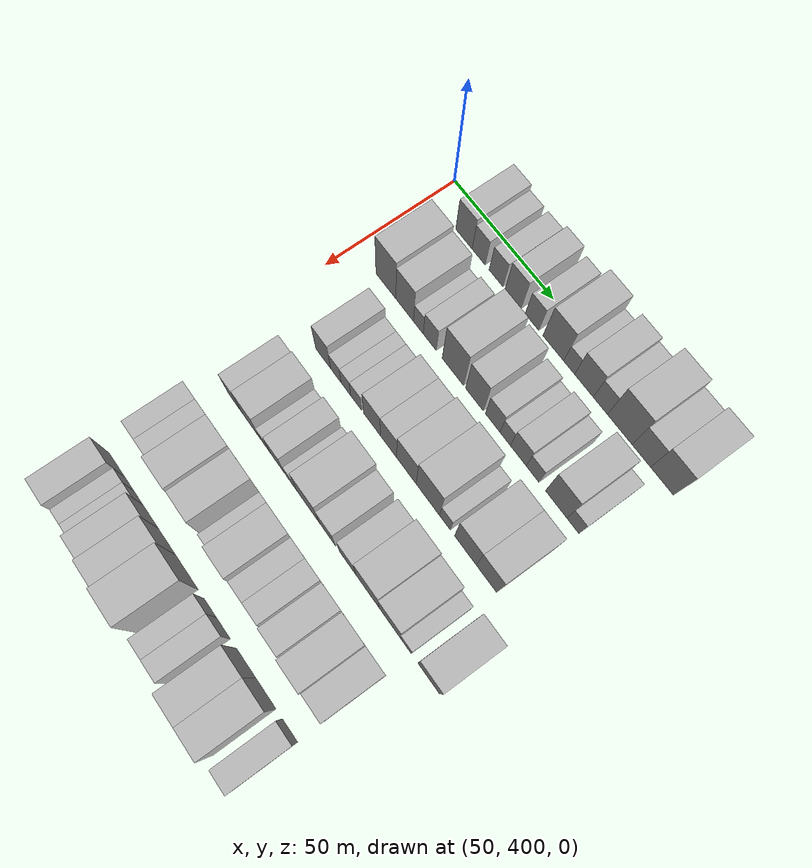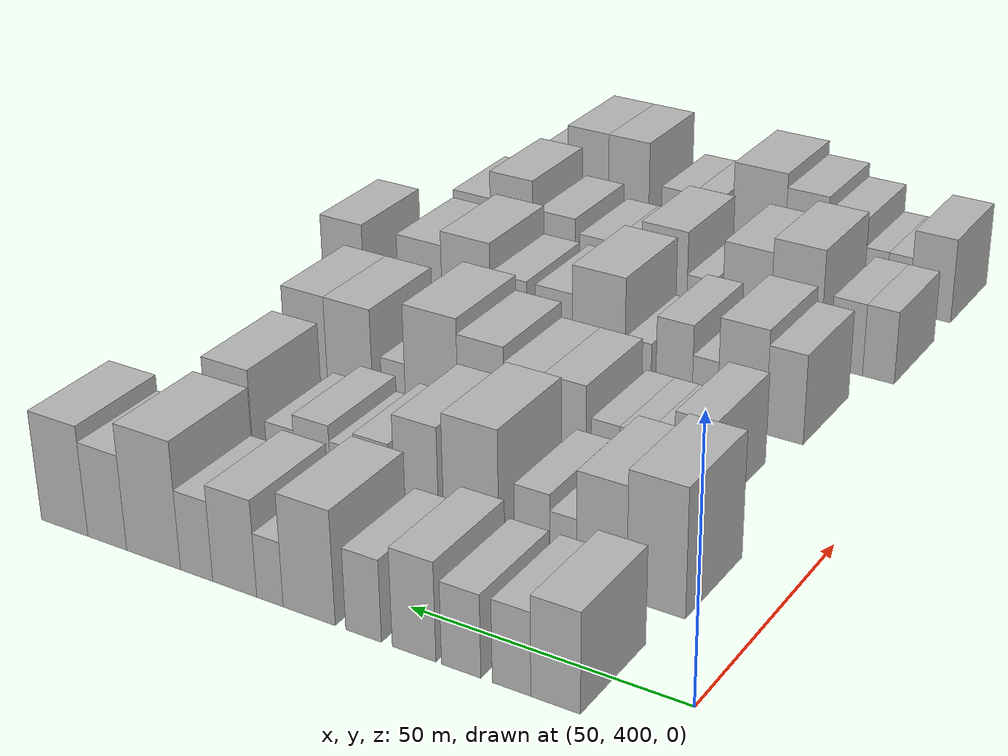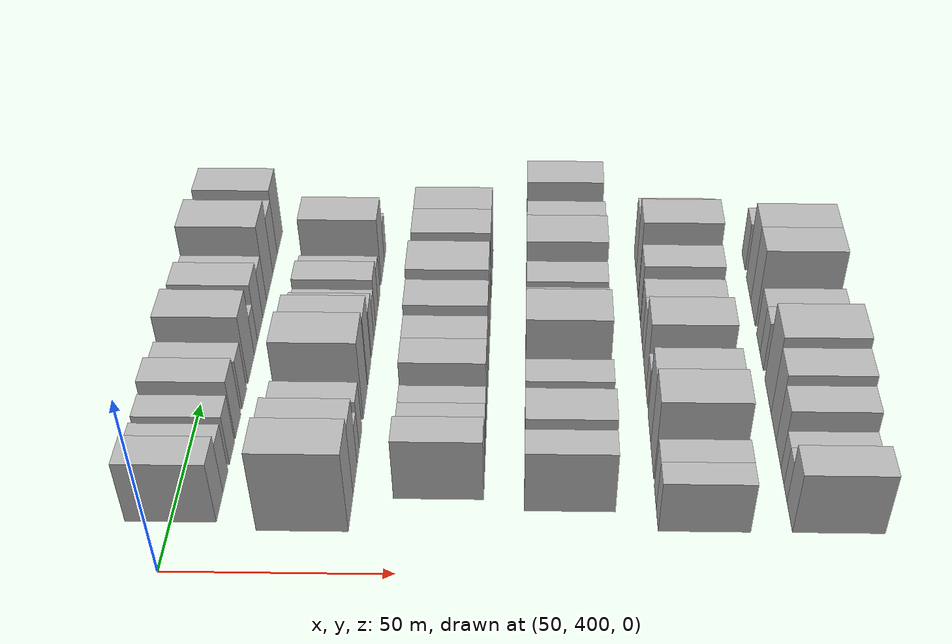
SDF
<sdf version="1.6">
 <world name="default">
  <model name="building_107">
   <static>1</static>
   <pose>50.0000 417.8469 0 0.000000 0.000000 0.000000</pose>
   <link name="link">
    <pose>0 0 9.00 0 0 0</pose>
    <collision name="collision"><geometry><box><size>20.0000 8.4690 18.0000</size></box></geometry></collision>
    <visual name="visual">
     <cast_shadows>0</cast_shadows>
     <geometry><box><size>20.0000 8.4690 18.0000</size></box></geometry>
     <material>
      <script>
       <uri>model://HANNAS_wall/materials/scripts</uri>
       <uri>model://HANNAS_wall/materials/textures</uri>
       <name>vrc/HANNAS_wall</name>
      </script>
     </material>
    </visual>
   </link>
  </model>
  <model name="building_108">
   <static>1</static>
   <pose>50.0000 425.4291 0 0.000000 0.000000 0.000000</pose>
   <link name="link">
    <pose>0 0 7.50 0 0 0</pose>
    <collision name="collision"><geometry><box><size>20.0000 6.6955 15.0000</size></box></geometry></collision>
    <visual name="visual">
     <cast_shadows>0</cast_shadows>
     <geometry><box><size>20.0000 6.6955 15.0000</size></box></geometry>
     <material>
      <script>
       <uri>model://HANNAS_wall/materials/scripts</uri>
       <uri>model://HANNAS_wall/materials/textures</uri>
       <name>vrc/HANNAS_wall</name>
      </script>
     </material>
    </visual>
   </link>
  </model>
  <model name="building_109">
   <static>1</static>
   <pose>50.0000 434.2887 0 0.000000 0.000000 0.000000</pose>
   <link name="link">
    <pose>0 0 7.50 0 0 0</pose>
    <collision name="collision"><geometry><box><size>20.0000 7.0236 15.0000</size></box></geometry></collision>
    <visual name="visual">
     <cast_shadows>0</cast_shadows>
     <geometry><box><size>20.0000 7.0236 15.0000</size></box></geometry>
     <material>
      <script>
       <uri>model://HANNAS_wall/materials/scripts</uri>
       <uri>model://HANNAS_wall/materials/textures</uri>
       <name>vrc/HANNAS_wall</name>
      </script>
     </material>
    </visual>
   </link>
  </model>
  <model name="building_110">
   <static>1</static>
   <pose>50.0000 442.7835 0 0.000000 0.000000 0.000000</pose>
   <link name="link">
    <pose>0 0 9.00 0 0 0</pose>
    <collision name="collision"><geometry><box><size>20.0000 7.9660 18.0000</size></box></geometry></collision>
    <visual name="visual">
     <cast_shadows>0</cast_shadows>
     <geometry><box><size>20.0000 7.9660 18.0000</size></box></geometry>
     <material>
      <script>
       <uri>model://HANNAS_wall/materials/scripts</uri>
       <uri>model://HANNAS_wall/materials/textures</uri>
       <name>vrc/HANNAS_wall</name>
      </script>
     </material>
    </visual>
   </link>
  </model>
  <model name="building_111">
   <static>1</static>
   <pose>50.0000 452.1081 0 0.000000 0.000000 0.000000</pose>
   <link name="link">
    <pose>0 0 7.50 0 0 0</pose>
    <collision name="collision"><geometry><box><size>20.0000 6.6832 15.0000</size></box></geometry></collision>
    <visual name="visual">
     <cast_shadows>0</cast_shadows>
     <geometry><box><size>20.0000 6.6832 15.0000</size></box></geometry>
     <material>
      <script>
       <uri>model://HANNAS_wall/materials/scripts</uri>
       <uri>model://HANNAS_wall/materials/textures</uri>
       <name>vrc/HANNAS_wall</name>
      </script>
     </material>
    </visual>
   </link>
  </model>
  <model name="building_112">
   <static>1</static>
   <pose>50.0000 462.4546 0 0.000000 0.000000 0.000000</pose>
   <link name="link">
    <pose>0 0 10.50 0 0 0</pose>
    <collision name="collision"><geometry><box><size>20.0000 10.0099 21.0000</size></box></geometry></collision>
    <visual name="visual">
     <cast_shadows>0</cast_shadows>
     <geometry><box><size>20.0000 10.0099 21.0000</size></box></geometry>
     <material>
      <script>
       <uri>model://HANNAS_wall/materials/scripts</uri>
       <uri>model://HANNAS_wall/materials/textures</uri>
       <name>vrc/HANNAS_wall</name>
      </script>
     </material>
    </visual>
   </link>
  </model>
  <model name="building_113">
   <static>1</static>
   <pose>50.0000 470.0604 0 0.000000 0.000000 0.000000</pose>
   <link name="link">
    <pose>0 0 6.00 0 0 0</pose>
    <collision name="collision"><geometry><box><size>20.0000 5.2017 12.0000</size></box></geometry></collision>
    <visual name="visual">
     <cast_shadows>0</cast_shadows>
     <geometry><box><size>20.0000 5.2017 12.0000</size></box></geometry>
     <material>
      <script>
       <uri>model://HANNAS_wall/materials/scripts</uri>
       <uri>model://HANNAS_wall/materials/textures</uri>
       <name>vrc/HANNAS_wall</name>
      </script>
     </material>
    </visual>
   </link>
  </model>
  <model name="building_114">
   <static>1</static>
   <pose>50.0000 477.0600 0 0.000000 0.000000 0.000000</pose>
   <link name="link">
    <pose>0 0 9.00 0 0 0</pose>
    <collision name="collision"><geometry><box><size>20.0000 8.7975 18.0000</size></box></geometry></collision>
    <visual name="visual">
     <cast_shadows>0</cast_shadows>
     <geometry><box><size>20.0000 8.7975 18.0000</size></box></geometry>
     <material>
      <script>
       <uri>model://HANNAS_wall/materials/scripts</uri>
       <uri>model://HANNAS_wall/materials/textures</uri>
       <name>vrc/HANNAS_wall</name>
      </script>
     </material>
    </visual>
   </link>
  </model>
  <model name="building_115">
   <static>1</static>
   <pose>50.0000 484.7468 0 0.000000 0.000000 0.000000</pose>
   <link name="link">
    <pose>0 0 7.50 0 0 0</pose>
    <collision name="collision"><geometry><box><size>20.0000 6.5759 15.0000</size></box></geometry></collision>
    <visual name="visual">
     <cast_shadows>0</cast_shadows>
     <geometry><box><size>20.0000 6.5759 15.0000</size></box></geometry>
     <material>
      <script>
       <uri>model://HANNAS_wall/materials/scripts</uri>
       <uri>model://HANNAS_wall/materials/textures</uri>
       <name>vrc/HANNAS_wall</name>
      </script>
     </material>
    </visual>
   </link>
  </model>
  <model name="building_116">
   <static>1</static>
   <pose>50.0000 493.6651 0 0.000000 0.000000 0.000000</pose>
   <link name="link">
    <pose>0 0 12.00 0 0 0</pose>
    <collision name="collision"><geometry><box><size>20.0000 11.2609 24.0000</size></box></geometry></collision>
    <visual name="visual">
     <cast_shadows>0</cast_shadows>
     <geometry><box><size>20.0000 11.2609 24.0000</size></box></geometry>
     <material>
      <script>
       <uri>model://HANNAS_wall/materials/scripts</uri>
       <uri>model://HANNAS_wall/materials/textures</uri>
       <name>vrc/HANNAS_wall</name>
      </script>
     </material>
    </visual>
   </link>
  </model>
  <model name="building_117">
   <static>1</static>
   <pose>50.0000 503.4534 0 0.000000 0.000000 0.000000</pose>
   <link name="link">
    <pose>0 0 9.00 0 0 0</pose>
    <collision name="collision"><geometry><box><size>20.0000 8.3157 18.0000</size></box></geometry></collision>
    <visual name="visual">
     <cast_shadows>0</cast_shadows>
     <geometry><box><size>20.0000 8.3157 18.0000</size></box></geometry>
     <material>
      <script>
       <uri>model://HANNAS_wall/materials/scripts</uri>
       <uri>model://HANNAS_wall/materials/textures</uri>
       <name>vrc/HANNAS_wall</name>
      </script>
     </material>
    </visual>
   </link>
  </model>
  <model name="building_118">
   <static>1</static>
   <pose>50.0000 512.6834 0 0.000000 0.000000 0.000000</pose>
   <link name="link">
    <pose>0 0 10.50 0 0 0</pose>
    <collision name="collision"><geometry><box><size>20.0000 10.1444 21.0000</size></box></geometry></collision>
    <visual name="visual">
     <cast_shadows>0</cast_shadows>
     <geometry><box><size>20.0000 10.1444 21.0000</size></box></geometry>
     <material>
      <script>
       <uri>model://HANNAS_wall/materials/scripts</uri>
       <uri>model://HANNAS_wall/materials/textures</uri>
       <name>vrc/HANNAS_wall</name>
      </script>
     </material>
    </visual>
   </link>
  </model>
  <model name="building_222">
   <static>1</static>
   <pose>79.0000 416.6727 0 0.000000 0.000000 0.000000</pose>
   <link name="link">
    <pose>0 0 12.00 0 0 0</pose>
    <collision name="collision"><geometry><box><size>20.0000 10.4493 24.0000</size></box></geometry></collision>
    <visual name="visual">
     <cast_shadows>0</cast_shadows>
     <geometry><box><size>20.0000 10.4493 24.0000</size></box></geometry>
     <material>
      <script>
       <uri>model://HANNAS_wall/materials/scripts</uri>
       <uri>model://HANNAS_wall/materials/textures</uri>
       <name>vrc/HANNAS_wall</name>
      </script>
     </material>
    </visual>
   </link>
  </model>
  <model name="building_223">
   <static>1</static>
   <pose>79.0000 426.4671 0 0.000000 0.000000 0.000000</pose>
   <link name="link">
    <pose>0 0 10.50 0 0 0</pose>
    <collision name="collision"><geometry><box><size>20.0000 9.1395 21.0000</size></box></geometry></collision>
    <visual name="visual">
     <cast_shadows>0</cast_shadows>
     <geometry><box><size>20.0000 9.1395 21.0000</size></box></geometry>
     <material>
      <script>
       <uri>model://HANNAS_wall/materials/scripts</uri>
       <uri>model://HANNAS_wall/materials/textures</uri>
       <name>vrc/HANNAS_wall</name>
      </script>
     </material>
    </visual>
   </link>
  </model>
  <model name="building_224">
   <static>1</static>
   <pose>79.0000 433.5079 0 0.000000 0.000000 0.000000</pose>
   <link name="link">
    <pose>0 0 6.00 0 0 0</pose>
    <collision name="collision"><geometry><box><size>20.0000 4.9420 12.0000</size></box></geometry></collision>
    <visual name="visual">
     <cast_shadows>0</cast_shadows>
     <geometry><box><size>20.0000 4.9420 12.0000</size></box></geometry>
     <material>
      <script>
       <uri>model://HANNAS_wall/materials/scripts</uri>
       <uri>model://HANNAS_wall/materials/textures</uri>
       <name>vrc/HANNAS_wall</name>
      </script>
     </material>
    </visual>
   </link>
  </model>
  <model name="building_225">
   <static>1</static>
   <pose>79.0000 439.2806 0 0.000000 0.000000 0.000000</pose>
   <link name="link">
    <pose>0 0 7.50 0 0 0</pose>
    <collision name="collision"><geometry><box><size>20.0000 6.6034 15.0000</size></box></geometry></collision>
    <visual name="visual">
     <cast_shadows>0</cast_shadows>
     <geometry><box><size>20.0000 6.6034 15.0000</size></box></geometry>
     <material>
      <script>
       <uri>model://HANNAS_wall/materials/scripts</uri>
       <uri>model://HANNAS_wall/materials/textures</uri>
       <name>vrc/HANNAS_wall</name>
      </script>
     </material>
    </visual>
   </link>
  </model>
  <model name="building_226">
   <static>1</static>
   <pose>79.0000 450.9050 0 0.000000 0.000000 0.000000</pose>
   <link name="link">
    <pose>0 0 12.00 0 0 0</pose>
    <collision name="collision"><geometry><box><size>20.0000 10.6454 24.0000</size></box></geometry></collision>
    <visual name="visual">
     <cast_shadows>0</cast_shadows>
     <geometry><box><size>20.0000 10.6454 24.0000</size></box></geometry>
     <material>
      <script>
       <uri>model://HANNAS_wall/materials/scripts</uri>
       <uri>model://HANNAS_wall/materials/textures</uri>
       <name>vrc/HANNAS_wall</name>
      </script>
     </material>
    </visual>
   </link>
  </model>
  <model name="building_227">
   <static>1</static>
   <pose>79.0000 461.5597 0 0.000000 0.000000 0.000000</pose>
   <link name="link">
    <pose>0 0 10.50 0 0 0</pose>
    <collision name="collision"><geometry><box><size>20.0000 8.6641 21.0000</size></box></geometry></collision>
    <visual name="visual">
     <cast_shadows>0</cast_shadows>
     <geometry><box><size>20.0000 8.6641 21.0000</size></box></geometry>
     <material>
      <script>
       <uri>model://HANNAS_wall/materials/scripts</uri>
       <uri>model://HANNAS_wall/materials/textures</uri>
       <name>vrc/HANNAS_wall</name>
      </script>
     </material>
    </visual>
   </link>
  </model>
  <model name="building_228">
   <static>1</static>
   <pose>79.0000 470.4027 0 0.000000 0.000000 0.000000</pose>
   <link name="link">
    <pose>0 0 7.50 0 0 0</pose>
    <collision name="collision"><geometry><box><size>20.0000 7.0219 15.0000</size></box></geometry></collision>
    <visual name="visual">
     <cast_shadows>0</cast_shadows>
     <geometry><box><size>20.0000 7.0219 15.0000</size></box></geometry>
     <material>
      <script>
       <uri>model://HANNAS_wall/materials/scripts</uri>
       <uri>model://HANNAS_wall/materials/textures</uri>
       <name>vrc/HANNAS_wall</name>
      </script>
     </material>
    </visual>
   </link>
  </model>
  <model name="building_229">
   <static>1</static>
   <pose>79.0000 476.4222 0 0.000000 0.000000 0.000000</pose>
   <link name="link">
    <pose>0 0 6.00 0 0 0</pose>
    <collision name="collision"><geometry><box><size>20.0000 5.0171 12.0000</size></box></geometry></collision>
    <visual name="visual">
     <cast_shadows>0</cast_shadows>
     <geometry><box><size>20.0000 5.0171 12.0000</size></box></geometry>
     <material>
      <script>
       <uri>model://HANNAS_wall/materials/scripts</uri>
       <uri>model://HANNAS_wall/materials/textures</uri>
       <name>vrc/HANNAS_wall</name>
      </script>
     </material>
    </visual>
   </link>
  </model>
  <model name="building_230">
   <static>1</static>
   <pose>79.0000 482.6497 0 0.000000 0.000000 0.000000</pose>
   <link name="link">
    <pose>0 0 7.50 0 0 0</pose>
    <collision name="collision"><geometry><box><size>20.0000 7.4380 15.0000</size></box></geometry></collision>
    <visual name="visual">
     <cast_shadows>0</cast_shadows>
     <geometry><box><size>20.0000 7.4380 15.0000</size></box></geometry>
     <material>
      <script>
       <uri>model://HANNAS_wall/materials/scripts</uri>
       <uri>model://HANNAS_wall/materials/textures</uri>
       <name>vrc/HANNAS_wall</name>
      </script>
     </material>
    </visual>
   </link>
  </model>
  <model name="building_231">
   <static>1</static>
   <pose>79.0000 489.3539 0 0.000000 0.000000 0.000000</pose>
   <link name="link">
    <pose>0 0 6.00 0 0 0</pose>
    <collision name="collision"><geometry><box><size>20.0000 5.9703 12.0000</size></box></geometry></collision>
    <visual name="visual">
     <cast_shadows>0</cast_shadows>
     <geometry><box><size>20.0000 5.9703 12.0000</size></box></geometry>
     <material>
      <script>
       <uri>model://HANNAS_wall/materials/scripts</uri>
       <uri>model://HANNAS_wall/materials/textures</uri>
       <name>vrc/HANNAS_wall</name>
      </script>
     </material>
    </visual>
   </link>
  </model>
  <model name="building_232">
   <static>1</static>
   <pose>79.0000 500.2686 0 0.000000 0.000000 0.000000</pose>
   <link name="link">
    <pose>0 0 10.50 0 0 0</pose>
    <collision name="collision"><geometry><box><size>20.0000 9.8591 21.0000</size></box></geometry></collision>
    <visual name="visual">
     <cast_shadows>0</cast_shadows>
     <geometry><box><size>20.0000 9.8591 21.0000</size></box></geometry>
     <material>
      <script>
       <uri>model://HANNAS_wall/materials/scripts</uri>
       <uri>model://HANNAS_wall/materials/textures</uri>
       <name>vrc/HANNAS_wall</name>
      </script>
     </material>
    </visual>
   </link>
  </model>
  <model name="building_233">
   <static>1</static>
   <pose>79.0000 507.9162 0 0.000000 0.000000 0.000000</pose>
   <link name="link">
    <pose>0 0 6.00 0 0 0</pose>
    <collision name="collision"><geometry><box><size>20.0000 5.4362 12.0000</size></box></geometry></collision>
    <visual name="visual">
     <cast_shadows>0</cast_shadows>
     <geometry><box><size>20.0000 5.4362 12.0000</size></box></geometry>
     <material>
      <script>
       <uri>model://HANNAS_wall/materials/scripts</uri>
       <uri>model://HANNAS_wall/materials/textures</uri>
       <name>vrc/HANNAS_wall</name>
      </script>
     </material>
    </visual>
   </link>
  </model>
  <model name="building_338">
   <static>1</static>
   <pose>108.0000 424.9982 0 0.000000 0.000000 0.000000</pose>
   <link name="link">
    <pose>0 0 9.00 0 0 0</pose>
    <collision name="collision"><geometry><box><size>20.0000 7.7825 18.0000</size></box></geometry></collision>
    <visual name="visual">
     <cast_shadows>0</cast_shadows>
     <geometry><box><size>20.0000 7.7825 18.0000</size></box></geometry>
     <material>
      <script>
       <uri>model://HANNAS_wall/materials/scripts</uri>
       <uri>model://HANNAS_wall/materials/textures</uri>
       <name>vrc/HANNAS_wall</name>
      </script>
     </material>
    </visual>
   </link>
  </model>
  <model name="building_339">
   <static>1</static>
   <pose>108.0000 431.6382 0 0.000000 0.000000 0.000000</pose>
   <link name="link">
    <pose>0 0 6.00 0 0 0</pose>
    <collision name="collision"><geometry><box><size>20.0000 5.4974 12.0000</size></box></geometry></collision>
    <visual name="visual">
     <cast_shadows>0</cast_shadows>
     <geometry><box><size>20.0000 5.4974 12.0000</size></box></geometry>
     <material>
      <script>
       <uri>model://HANNAS_wall/materials/scripts</uri>
       <uri>model://HANNAS_wall/materials/textures</uri>
       <name>vrc/HANNAS_wall</name>
      </script>
     </material>
    </visual>
   </link>
  </model>
  <model name="building_340">
   <static>1</static>
   <pose>108.0000 436.8487 0 0.000000 0.000000 0.000000</pose>
   <link name="link">
    <pose>0 0 6.00 0 0 0</pose>
    <collision name="collision"><geometry><box><size>20.0000 4.9236 12.0000</size></box></geometry></collision>
    <visual name="visual">
     <cast_shadows>0</cast_shadows>
     <geometry><box><size>20.0000 4.9236 12.0000</size></box></geometry>
     <material>
      <script>
       <uri>model://HANNAS_wall/materials/scripts</uri>
       <uri>model://HANNAS_wall/materials/textures</uri>
       <name>vrc/HANNAS_wall</name>
      </script>
     </material>
    </visual>
   </link>
  </model>
  <model name="building_341">
   <static>1</static>
   <pose>108.0000 442.0945 0 0.000000 0.000000 0.000000</pose>
   <link name="link">
    <pose>0 0 6.00 0 0 0</pose>
    <collision name="collision"><geometry><box><size>20.0000 5.5679 12.0000</size></box></geometry></collision>
    <visual name="visual">
     <cast_shadows>0</cast_shadows>
     <geometry><box><size>20.0000 5.5679 12.0000</size></box></geometry>
     <material>
      <script>
       <uri>model://HANNAS_wall/materials/scripts</uri>
       <uri>model://HANNAS_wall/materials/textures</uri>
       <name>vrc/HANNAS_wall</name>
      </script>
     </material>
    </visual>
   </link>
  </model>
  <model name="building_342">
   <static>1</static>
   <pose>108.0000 450.1559 0 0.000000 0.000000 0.000000</pose>
   <link name="link">
    <pose>0 0 9.00 0 0 0</pose>
    <collision name="collision"><geometry><box><size>20.0000 8.5549 18.0000</size></box></geometry></collision>
    <visual name="visual">
     <cast_shadows>0</cast_shadows>
     <geometry><box><size>20.0000 8.5549 18.0000</size></box></geometry>
     <material>
      <script>
       <uri>model://HANNAS_wall/materials/scripts</uri>
       <uri>model://HANNAS_wall/materials/textures</uri>
       <name>vrc/HANNAS_wall</name>
      </script>
     </material>
    </visual>
   </link>
  </model>
  <model name="building_343">
   <static>1</static>
   <pose>108.0000 458.4523 0 0.000000 0.000000 0.000000</pose>
   <link name="link">
    <pose>0 0 9.00 0 0 0</pose>
    <collision name="collision"><geometry><box><size>20.0000 8.0379 18.0000</size></box></geometry></collision>
    <visual name="visual">
     <cast_shadows>0</cast_shadows>
     <geometry><box><size>20.0000 8.0379 18.0000</size></box></geometry>
     <material>
      <script>
       <uri>model://HANNAS_wall/materials/scripts</uri>
       <uri>model://HANNAS_wall/materials/textures</uri>
       <name>vrc/HANNAS_wall</name>
      </script>
     </material>
    </visual>
   </link>
  </model>
  <model name="building_344">
   <static>1</static>
   <pose>108.0000 467.2812 0 0.000000 0.000000 0.000000</pose>
   <link name="link">
    <pose>0 0 10.50 0 0 0</pose>
    <collision name="collision"><geometry><box><size>20.0000 9.6198 21.0000</size></box></geometry></collision>
    <visual name="visual">
     <cast_shadows>0</cast_shadows>
     <geometry><box><size>20.0000 9.6198 21.0000</size></box></geometry>
     <material>
      <script>
       <uri>model://HANNAS_wall/materials/scripts</uri>
       <uri>model://HANNAS_wall/materials/textures</uri>
       <name>vrc/HANNAS_wall</name>
      </script>
     </material>
    </visual>
   </link>
  </model>
  <model name="building_345">
   <static>1</static>
   <pose>108.0000 477.7263 0 0.000000 0.000000 0.000000</pose>
   <link name="link">
    <pose>0 0 12.00 0 0 0</pose>
    <collision name="collision"><geometry><box><size>20.0000 11.2703 24.0000</size></box></geometry></collision>
    <visual name="visual">
     <cast_shadows>0</cast_shadows>
     <geometry><box><size>20.0000 11.2703 24.0000</size></box></geometry>
     <material>
      <script>
       <uri>model://HANNAS_wall/materials/scripts</uri>
       <uri>model://HANNAS_wall/materials/textures</uri>
       <name>vrc/HANNAS_wall</name>
      </script>
     </material>
    </visual>
   </link>
  </model>
  <model name="building_346">
   <static>1</static>
   <pose>108.0000 485.9460 0 0.000000 0.000000 0.000000</pose>
   <link name="link">
    <pose>0 0 6.00 0 0 0</pose>
    <collision name="collision"><geometry><box><size>20.0000 5.1692 12.0000</size></box></geometry></collision>
    <visual name="visual">
     <cast_shadows>0</cast_shadows>
     <geometry><box><size>20.0000 5.1692 12.0000</size></box></geometry>
     <material>
      <script>
       <uri>model://HANNAS_wall/materials/scripts</uri>
       <uri>model://HANNAS_wall/materials/textures</uri>
       <name>vrc/HANNAS_wall</name>
      </script>
     </material>
    </visual>
   </link>
  </model>
  <model name="building_347">
   <static>1</static>
   <pose>108.0000 495.5964 0 0.000000 0.000000 0.000000</pose>
   <link name="link">
    <pose>0 0 10.50 0 0 0</pose>
    <collision name="collision"><geometry><box><size>20.0000 10.1316 21.0000</size></box></geometry></collision>
    <visual name="visual">
     <cast_shadows>0</cast_shadows>
     <geometry><box><size>20.0000 10.1316 21.0000</size></box></geometry>
     <material>
      <script>
       <uri>model://HANNAS_wall/materials/scripts</uri>
       <uri>model://HANNAS_wall/materials/textures</uri>
       <name>vrc/HANNAS_wall</name>
      </script>
     </material>
    </visual>
   </link>
  </model>
  <model name="building_348">
   <static>1</static>
   <pose>108.0000 505.3718 0 0.000000 0.000000 0.000000</pose>
   <link name="link">
    <pose>0 0 10.50 0 0 0</pose>
    <collision name="collision"><geometry><box><size>20.0000 9.4191 21.0000</size></box></geometry></collision>
    <visual name="visual">
     <cast_shadows>0</cast_shadows>
     <geometry><box><size>20.0000 9.4191 21.0000</size></box></geometry>
     <material>
      <script>
       <uri>model://HANNAS_wall/materials/scripts</uri>
       <uri>model://HANNAS_wall/materials/textures</uri>
       <name>vrc/HANNAS_wall</name>
      </script>
     </material>
    </visual>
   </link>
  </model>
  <model name="building_455">
   <static>1</static>
   <pose>137.0000 421.6852 0 0.000000 0.000000 0.000000</pose>
   <link name="link">
    <pose>0 0 9.00 0 0 0</pose>
    <collision name="collision"><geometry><box><size>20.0000 7.3856 18.0000</size></box></geometry></collision>
    <visual name="visual">
     <cast_shadows>0</cast_shadows>
     <geometry><box><size>20.0000 7.3856 18.0000</size></box></geometry>
     <material>
      <script>
       <uri>model://HANNAS_wall/materials/scripts</uri>
       <uri>model://HANNAS_wall/materials/textures</uri>
       <name>vrc/HANNAS_wall</name>
      </script>
     </material>
    </visual>
   </link>
  </model>
  <model name="building_456">
   <static>1</static>
   <pose>137.0000 430.2440 0 0.000000 0.000000 0.000000</pose>
   <link name="link">
    <pose>0 0 10.50 0 0 0</pose>
    <collision name="collision"><geometry><box><size>20.0000 9.7319 21.0000</size></box></geometry></collision>
    <visual name="visual">
     <cast_shadows>0</cast_shadows>
     <geometry><box><size>20.0000 9.7319 21.0000</size></box></geometry>
     <material>
      <script>
       <uri>model://HANNAS_wall/materials/scripts</uri>
       <uri>model://HANNAS_wall/materials/textures</uri>
       <name>vrc/HANNAS_wall</name>
      </script>
     </material>
    </visual>
   </link>
  </model>
  <model name="building_457">
   <static>1</static>
   <pose>137.0000 437.7007 0 0.000000 0.000000 0.000000</pose>
   <link name="link">
    <pose>0 0 6.00 0 0 0</pose>
    <collision name="collision"><geometry><box><size>20.0000 5.1815 12.0000</size></box></geometry></collision>
    <visual name="visual">
     <cast_shadows>0</cast_shadows>
     <geometry><box><size>20.0000 5.1815 12.0000</size></box></geometry>
     <material>
      <script>
       <uri>model://HANNAS_wall/materials/scripts</uri>
       <uri>model://HANNAS_wall/materials/textures</uri>
       <name>vrc/HANNAS_wall</name>
      </script>
     </material>
    </visual>
   </link>
  </model>
  <model name="building_458">
   <static>1</static>
   <pose>137.0000 444.0314 0 0.000000 0.000000 0.000000</pose>
   <link name="link">
    <pose>0 0 9.00 0 0 0</pose>
    <collision name="collision"><geometry><box><size>20.0000 7.4799 18.0000</size></box></geometry></collision>
    <visual name="visual">
     <cast_shadows>0</cast_shadows>
     <geometry><box><size>20.0000 7.4799 18.0000</size></box></geometry>
     <material>
      <script>
       <uri>model://HANNAS_wall/materials/scripts</uri>
       <uri>model://HANNAS_wall/materials/textures</uri>
       <name>vrc/HANNAS_wall</name>
      </script>
     </material>
    </visual>
   </link>
  </model>
  <model name="building_459">
   <static>1</static>
   <pose>137.0000 451.5220 0 0.000000 0.000000 0.000000</pose>
   <link name="link">
    <pose>0 0 6.00 0 0 0</pose>
    <collision name="collision"><geometry><box><size>20.0000 5.5014 12.0000</size></box></geometry></collision>
    <visual name="visual">
     <cast_shadows>0</cast_shadows>
     <geometry><box><size>20.0000 5.5014 12.0000</size></box></geometry>
     <material>
      <script>
       <uri>model://HANNAS_wall/materials/scripts</uri>
       <uri>model://HANNAS_wall/materials/textures</uri>
       <name>vrc/HANNAS_wall</name>
      </script>
     </material>
    </visual>
   </link>
  </model>
  <model name="building_460">
   <static>1</static>
   <pose>137.0000 459.8860 0 0.000000 0.000000 0.000000</pose>
   <link name="link">
    <pose>0 0 12.00 0 0 0</pose>
    <collision name="collision"><geometry><box><size>20.0000 11.2265 24.0000</size></box></geometry></collision>
    <visual name="visual">
     <cast_shadows>0</cast_shadows>
     <geometry><box><size>20.0000 11.2265 24.0000</size></box></geometry>
     <material>
      <script>
       <uri>model://HANNAS_wall/materials/scripts</uri>
       <uri>model://HANNAS_wall/materials/textures</uri>
       <name>vrc/HANNAS_wall</name>
      </script>
     </material>
    </visual>
   </link>
  </model>
  <model name="building_461">
   <static>1</static>
   <pose>137.0000 469.4346 0 0.000000 0.000000 0.000000</pose>
   <link name="link">
    <pose>0 0 9.00 0 0 0</pose>
    <collision name="collision"><geometry><box><size>20.0000 7.8708 18.0000</size></box></geometry></collision>
    <visual name="visual">
     <cast_shadows>0</cast_shadows>
     <geometry><box><size>20.0000 7.8708 18.0000</size></box></geometry>
     <material>
      <script>
       <uri>model://HANNAS_wall/materials/scripts</uri>
       <uri>model://HANNAS_wall/materials/textures</uri>
       <name>vrc/HANNAS_wall</name>
      </script>
     </material>
    </visual>
   </link>
  </model>
  <model name="building_462">
   <static>1</static>
   <pose>137.0000 479.3764 0 0.000000 0.000000 0.000000</pose>
   <link name="link">
    <pose>0 0 9.00 0 0 0</pose>
    <collision name="collision"><geometry><box><size>20.0000 8.0127 18.0000</size></box></geometry></collision>
    <visual name="visual">
     <cast_shadows>0</cast_shadows>
     <geometry><box><size>20.0000 8.0127 18.0000</size></box></geometry>
     <material>
      <script>
       <uri>model://HANNAS_wall/materials/scripts</uri>
       <uri>model://HANNAS_wall/materials/textures</uri>
       <name>vrc/HANNAS_wall</name>
      </script>
     </material>
    </visual>
   </link>
  </model>
  <model name="building_463">
   <static>1</static>
   <pose>137.0000 488.8518 0 0.000000 0.000000 0.000000</pose>
   <link name="link">
    <pose>0 0 12.00 0 0 0</pose>
    <collision name="collision"><geometry><box><size>20.0000 10.9382 24.0000</size></box></geometry></collision>
    <visual name="visual">
     <cast_shadows>0</cast_shadows>
     <geometry><box><size>20.0000 10.9382 24.0000</size></box></geometry>
     <material>
      <script>
       <uri>model://HANNAS_wall/materials/scripts</uri>
       <uri>model://HANNAS_wall/materials/textures</uri>
       <name>vrc/HANNAS_wall</name>
      </script>
     </material>
    </visual>
   </link>
  </model>
  <model name="building_464">
   <static>1</static>
   <pose>137.0000 499.3842 0 0.000000 0.000000 0.000000</pose>
   <link name="link">
    <pose>0 0 10.50 0 0 0</pose>
    <collision name="collision"><geometry><box><size>20.0000 10.1266 21.0000</size></box></geometry></collision>
    <visual name="visual">
     <cast_shadows>0</cast_shadows>
     <geometry><box><size>20.0000 10.1266 21.0000</size></box></geometry>
     <material>
      <script>
       <uri>model://HANNAS_wall/materials/scripts</uri>
       <uri>model://HANNAS_wall/materials/textures</uri>
       <name>vrc/HANNAS_wall</name>
      </script>
     </material>
    </visual>
   </link>
  </model>
  <model name="building_465">
   <static>1</static>
   <pose>137.0000 507.0243 0 0.000000 0.000000 0.000000</pose>
   <link name="link">
    <pose>0 0 6.00 0 0 0</pose>
    <collision name="collision"><geometry><box><size>20.0000 5.1535 12.0000</size></box></geometry></collision>
    <visual name="visual">
     <cast_shadows>0</cast_shadows>
     <geometry><box><size>20.0000 5.1535 12.0000</size></box></geometry>
     <material>
      <script>
       <uri>model://HANNAS_wall/materials/scripts</uri>
       <uri>model://HANNAS_wall/materials/textures</uri>
       <name>vrc/HANNAS_wall</name>
      </script>
     </material>
    </visual>
   </link>
  </model>
  <model name="building_466">
   <static>1</static>
   <pose>137.0000 517.5147 0 0.000000 0.000000 0.000000</pose>
   <link name="link">
    <pose>0 0 10.50 0 0 0</pose>
    <collision name="collision"><geometry><box><size>20.0000 9.8272 21.0000</size></box></geometry></collision>
    <visual name="visual">
     <cast_shadows>0</cast_shadows>
     <geometry><box><size>20.0000 9.8272 21.0000</size></box></geometry>
     <material>
      <script>
       <uri>model://HANNAS_wall/materials/scripts</uri>
       <uri>model://HANNAS_wall/materials/textures</uri>
       <name>vrc/HANNAS_wall</name>
      </script>
     </material>
    </visual>
   </link>
  </model>
  <model name="building_574">
   <static>1</static>
   <pose>166.0000 415.8737 0 0.000000 0.000000 0.000000</pose>
   <link name="link">
    <pose>0 0 7.50 0 0 0</pose>
    <collision name="collision"><geometry><box><size>20.0000 6.4068 15.0000</size></box></geometry></collision>
    <visual name="visual">
     <cast_shadows>0</cast_shadows>
     <geometry><box><size>20.0000 6.4068 15.0000</size></box></geometry>
     <material>
      <script>
       <uri>model://HANNAS_wall/materials/scripts</uri>
       <uri>model://HANNAS_wall/materials/textures</uri>
       <name>vrc/HANNAS_wall</name>
      </script>
     </material>
    </visual>
   </link>
  </model>
  <model name="building_575">
   <static>1</static>
   <pose>166.0000 422.4687 0 0.000000 0.000000 0.000000</pose>
   <link name="link">
    <pose>0 0 7.50 0 0 0</pose>
    <collision name="collision"><geometry><box><size>20.0000 6.7831 15.0000</size></box></geometry></collision>
    <visual name="visual">
     <cast_shadows>0</cast_shadows>
     <geometry><box><size>20.0000 6.7831 15.0000</size></box></geometry>
     <material>
      <script>
       <uri>model://HANNAS_wall/materials/scripts</uri>
       <uri>model://HANNAS_wall/materials/textures</uri>
       <name>vrc/HANNAS_wall</name>
      </script>
     </material>
    </visual>
   </link>
  </model>
  <model name="building_576">
   <static>1</static>
   <pose>166.0000 433.1827 0 0.000000 0.000000 0.000000</pose>
   <link name="link">
    <pose>0 0 12.00 0 0 0</pose>
    <collision name="collision"><geometry><box><size>20.0000 10.6448 24.0000</size></box></geometry></collision>
    <visual name="visual">
     <cast_shadows>0</cast_shadows>
     <geometry><box><size>20.0000 10.6448 24.0000</size></box></geometry>
     <material>
      <script>
       <uri>model://HANNAS_wall/materials/scripts</uri>
       <uri>model://HANNAS_wall/materials/textures</uri>
       <name>vrc/HANNAS_wall</name>
      </script>
     </material>
    </visual>
   </link>
  </model>
  <model name="building_577">
   <static>1</static>
   <pose>166.0000 443.6280 0 0.000000 0.000000 0.000000</pose>
   <link name="link">
    <pose>0 0 10.50 0 0 0</pose>
    <collision name="collision"><geometry><box><size>20.0000 10.2458 21.0000</size></box></geometry></collision>
    <visual name="visual">
     <cast_shadows>0</cast_shadows>
     <geometry><box><size>20.0000 10.2458 21.0000</size></box></geometry>
     <material>
      <script>
       <uri>model://HANNAS_wall/materials/scripts</uri>
       <uri>model://HANNAS_wall/materials/textures</uri>
       <name>vrc/HANNAS_wall</name>
      </script>
     </material>
    </visual>
   </link>
  </model>
  <model name="building_578">
   <static>1</static>
   <pose>166.0000 453.6131 0 0.000000 0.000000 0.000000</pose>
   <link name="link">
    <pose>0 0 6.00 0 0 0</pose>
    <collision name="collision"><geometry><box><size>20.0000 5.7244 12.0000</size></box></geometry></collision>
    <visual name="visual">
     <cast_shadows>0</cast_shadows>
     <geometry><box><size>20.0000 5.7244 12.0000</size></box></geometry>
     <material>
      <script>
       <uri>model://HANNAS_wall/materials/scripts</uri>
       <uri>model://HANNAS_wall/materials/textures</uri>
       <name>vrc/HANNAS_wall</name>
      </script>
     </material>
    </visual>
   </link>
  </model>
  <model name="building_579">
   <static>1</static>
   <pose>166.0000 461.5668 0 0.000000 0.000000 0.000000</pose>
   <link name="link">
    <pose>0 0 10.50 0 0 0</pose>
    <collision name="collision"><geometry><box><size>20.0000 10.1830 21.0000</size></box></geometry></collision>
    <visual name="visual">
     <cast_shadows>0</cast_shadows>
     <geometry><box><size>20.0000 10.1830 21.0000</size></box></geometry>
     <material>
      <script>
       <uri>model://HANNAS_wall/materials/scripts</uri>
       <uri>model://HANNAS_wall/materials/textures</uri>
       <name>vrc/HANNAS_wall</name>
      </script>
     </material>
    </visual>
   </link>
  </model>
  <model name="building_580">
   <static>1</static>
   <pose>166.0000 470.0678 0 0.000000 0.000000 0.000000</pose>
   <link name="link">
    <pose>0 0 7.50 0 0 0</pose>
    <collision name="collision"><geometry><box><size>20.0000 6.8190 15.0000</size></box></geometry></collision>
    <visual name="visual">
     <cast_shadows>0</cast_shadows>
     <geometry><box><size>20.0000 6.8190 15.0000</size></box></geometry>
     <material>
      <script>
       <uri>model://HANNAS_wall/materials/scripts</uri>
       <uri>model://HANNAS_wall/materials/textures</uri>
       <name>vrc/HANNAS_wall</name>
      </script>
     </material>
    </visual>
   </link>
  </model>
  <model name="building_581">
   <static>1</static>
   <pose>166.0000 477.0614 0 0.000000 0.000000 0.000000</pose>
   <link name="link">
    <pose>0 0 7.50 0 0 0</pose>
    <collision name="collision"><geometry><box><size>20.0000 7.1682 15.0000</size></box></geometry></collision>
    <visual name="visual">
     <cast_shadows>0</cast_shadows>
     <geometry><box><size>20.0000 7.1682 15.0000</size></box></geometry>
     <material>
      <script>
       <uri>model://HANNAS_wall/materials/scripts</uri>
       <uri>model://HANNAS_wall/materials/textures</uri>
       <name>vrc/HANNAS_wall</name>
      </script>
     </material>
    </visual>
   </link>
  </model>
  <model name="building_582">
   <static>1</static>
   <pose>166.0000 486.0588 0 0.000000 0.000000 0.000000</pose>
   <link name="link">
    <pose>0 0 9.00 0 0 0</pose>
    <collision name="collision"><geometry><box><size>20.0000 8.8265 18.0000</size></box></geometry></collision>
    <visual name="visual">
     <cast_shadows>0</cast_shadows>
     <geometry><box><size>20.0000 8.8265 18.0000</size></box></geometry>
     <material>
      <script>
       <uri>model://HANNAS_wall/materials/scripts</uri>
       <uri>model://HANNAS_wall/materials/textures</uri>
       <name>vrc/HANNAS_wall</name>
      </script>
     </material>
    </visual>
   </link>
  </model>
  <model name="building_583">
   <static>1</static>
   <pose>166.0000 496.4714 0 0.000000 0.000000 0.000000</pose>
   <link name="link">
    <pose>0 0 12.00 0 0 0</pose>
    <collision name="collision"><geometry><box><size>20.0000 9.9988 24.0000</size></box></geometry></collision>
    <visual name="visual">
     <cast_shadows>0</cast_shadows>
     <geometry><box><size>20.0000 9.9988 24.0000</size></box></geometry>
     <material>
      <script>
       <uri>model://HANNAS_wall/materials/scripts</uri>
       <uri>model://HANNAS_wall/materials/textures</uri>
       <name>vrc/HANNAS_wall</name>
      </script>
     </material>
    </visual>
   </link>
  </model>
  <model name="building_584">
   <static>1</static>
   <pose>166.0000 505.8814 0 0.000000 0.000000 0.000000</pose>
   <link name="link">
    <pose>0 0 9.00 0 0 0</pose>
    <collision name="collision"><geometry><box><size>20.0000 8.8212 18.0000</size></box></geometry></collision>
    <visual name="visual">
     <cast_shadows>0</cast_shadows>
     <geometry><box><size>20.0000 8.8212 18.0000</size></box></geometry>
     <material>
      <script>
       <uri>model://HANNAS_wall/materials/scripts</uri>
       <uri>model://HANNAS_wall/materials/textures</uri>
       <name>vrc/HANNAS_wall</name>
      </script>
     </material>
    </visual>
   </link>
  </model>
  <model name="building_687">
   <static>1</static>
   <pose>195.0000 417.1616 0 0.000000 0.000000 0.000000</pose>
   <link name="link">
    <pose>0 0 9.00 0 0 0</pose>
    <collision name="collision"><geometry><box><size>20.0000 8.8134 18.0000</size></box></geometry></collision>
    <visual name="visual">
     <cast_shadows>0</cast_shadows>
     <geometry><box><size>20.0000 8.8134 18.0000</size></box></geometry>
     <material>
      <script>
       <uri>model://HANNAS_wall/materials/scripts</uri>
       <uri>model://HANNAS_wall/materials/textures</uri>
       <name>vrc/HANNAS_wall</name>
      </script>
     </material>
    </visual>
   </link>
  </model>
  <model name="building_688">
   <static>1</static>
   <pose>195.0000 424.0698 0 0.000000 0.000000 0.000000</pose>
   <link name="link">
    <pose>0 0 6.00 0 0 0</pose>
    <collision name="collision"><geometry><box><size>20.0000 5.0028 12.0000</size></box></geometry></collision>
    <visual name="visual">
     <cast_shadows>0</cast_shadows>
     <geometry><box><size>20.0000 5.0028 12.0000</size></box></geometry>
     <material>
      <script>
       <uri>model://HANNAS_wall/materials/scripts</uri>
       <uri>model://HANNAS_wall/materials/textures</uri>
       <name>vrc/HANNAS_wall</name>
      </script>
     </material>
    </visual>
   </link>
  </model>
  <model name="building_689">
   <static>1</static>
   <pose>195.0000 429.0844 0 0.000000 0.000000 0.000000</pose>
   <link name="link">
    <pose>0 0 6.00 0 0 0</pose>
    <collision name="collision"><geometry><box><size>20.0000 5.0263 12.0000</size></box></geometry></collision>
    <visual name="visual">
     <cast_shadows>0</cast_shadows>
     <geometry><box><size>20.0000 5.0263 12.0000</size></box></geometry>
     <material>
      <script>
       <uri>model://HANNAS_wall/materials/scripts</uri>
       <uri>model://HANNAS_wall/materials/textures</uri>
       <name>vrc/HANNAS_wall</name>
      </script>
     </material>
    </visual>
   </link>
  </model>
  <model name="building_690">
   <static>1</static>
   <pose>195.0000 435.7515 0 0.000000 0.000000 0.000000</pose>
   <link name="link">
    <pose>0 0 9.00 0 0 0</pose>
    <collision name="collision"><geometry><box><size>20.0000 8.3080 18.0000</size></box></geometry></collision>
    <visual name="visual">
     <cast_shadows>0</cast_shadows>
     <geometry><box><size>20.0000 8.3080 18.0000</size></box></geometry>
     <material>
      <script>
       <uri>model://HANNAS_wall/materials/scripts</uri>
       <uri>model://HANNAS_wall/materials/textures</uri>
       <name>vrc/HANNAS_wall</name>
      </script>
     </material>
    </visual>
   </link>
  </model>
  <model name="building_691">
   <static>1</static>
   <pose>195.0000 444.5129 0 0.000000 0.000000 0.000000</pose>
   <link name="link">
    <pose>0 0 10.50 0 0 0</pose>
    <collision name="collision"><geometry><box><size>20.0000 9.2149 21.0000</size></box></geometry></collision>
    <visual name="visual">
     <cast_shadows>0</cast_shadows>
     <geometry><box><size>20.0000 9.2149 21.0000</size></box></geometry>
     <material>
      <script>
       <uri>model://HANNAS_wall/materials/scripts</uri>
       <uri>model://HANNAS_wall/materials/textures</uri>
       <name>vrc/HANNAS_wall</name>
      </script>
     </material>
    </visual>
   </link>
  </model>
  <model name="building_692">
   <static>1</static>
   <pose>195.0000 455.0770 0 0.000000 0.000000 0.000000</pose>
   <link name="link">
    <pose>0 0 12.00 0 0 0</pose>
    <collision name="collision"><geometry><box><size>20.0000 11.9132 24.0000</size></box></geometry></collision>
    <visual name="visual">
     <cast_shadows>0</cast_shadows>
     <geometry><box><size>20.0000 11.9132 24.0000</size></box></geometry>
     <material>
      <script>
       <uri>model://HANNAS_wall/materials/scripts</uri>
       <uri>model://HANNAS_wall/materials/textures</uri>
       <name>vrc/HANNAS_wall</name>
      </script>
     </material>
    </visual>
   </link>
  </model>
  <model name="building_693">
   <static>1</static>
   <pose>195.0000 467.2314 0 0.000000 0.000000 0.000000</pose>
   <link name="link">
    <pose>0 0 7.50 0 0 0</pose>
    <collision name="collision"><geometry><box><size>20.0000 6.3957 15.0000</size></box></geometry></collision>
    <visual name="visual">
     <cast_shadows>0</cast_shadows>
     <geometry><box><size>20.0000 6.3957 15.0000</size></box></geometry>
     <material>
      <script>
       <uri>model://HANNAS_wall/materials/scripts</uri>
       <uri>model://HANNAS_wall/materials/textures</uri>
       <name>vrc/HANNAS_wall</name>
      </script>
     </material>
    </visual>
   </link>
  </model>
  <model name="building_694">
   <static>1</static>
   <pose>195.0000 473.9743 0 0.000000 0.000000 0.000000</pose>
   <link name="link">
    <pose>0 0 7.50 0 0 0</pose>
    <collision name="collision"><geometry><box><size>20.0000 7.0901 15.0000</size></box></geometry></collision>
    <visual name="visual">
     <cast_shadows>0</cast_shadows>
     <geometry><box><size>20.0000 7.0901 15.0000</size></box></geometry>
     <material>
      <script>
       <uri>model://HANNAS_wall/materials/scripts</uri>
       <uri>model://HANNAS_wall/materials/textures</uri>
       <name>vrc/HANNAS_wall</name>
      </script>
     </material>
    </visual>
   </link>
  </model>
  <model name="building_695">
   <static>1</static>
   <pose>195.0000 485.3707 0 0.000000 0.000000 0.000000</pose>
   <link name="link">
    <pose>0 0 12.00 0 0 0</pose>
    <collision name="collision"><geometry><box><size>20.0000 9.7027 24.0000</size></box></geometry></collision>
    <visual name="visual">
     <cast_shadows>0</cast_shadows>
     <geometry><box><size>20.0000 9.7027 24.0000</size></box></geometry>
     <material>
      <script>
       <uri>model://HANNAS_wall/materials/scripts</uri>
       <uri>model://HANNAS_wall/materials/textures</uri>
       <name>vrc/HANNAS_wall</name>
      </script>
     </material>
    </visual>
   </link>
  </model>
  <model name="building_696">
   <static>1</static>
   <pose>195.0000 495.1551 0 0.000000 0.000000 0.000000</pose>
   <link name="link">
    <pose>0 0 12.00 0 0 0</pose>
    <collision name="collision"><geometry><box><size>20.0000 9.8660 24.0000</size></box></geometry></collision>
    <visual name="visual">
     <cast_shadows>0</cast_shadows>
     <geometry><box><size>20.0000 9.8660 24.0000</size></box></geometry>
     <material>
      <script>
       <uri>model://HANNAS_wall/materials/scripts</uri>
       <uri>model://HANNAS_wall/materials/textures</uri>
       <name>vrc/HANNAS_wall</name>
      </script>
     </material>
    </visual>
   </link>
  </model>
  <model name="building_697">
   <static>1</static>
   <pose>195.0000 506.7800 0 0.000000 0.000000 0.000000</pose>
   <link name="link">
    <pose>0 0 7.50 0 0 0</pose>
    <collision name="collision"><geometry><box><size>20.0000 7.3837 15.0000</size></box></geometry></collision>
    <visual name="visual">
     <cast_shadows>0</cast_shadows>
     <geometry><box><size>20.0000 7.3837 15.0000</size></box></geometry>
     <material>
      <script>
       <uri>model://HANNAS_wall/materials/scripts</uri>
       <uri>model://HANNAS_wall/materials/textures</uri>
       <name>vrc/HANNAS_wall</name>
      </script>
     </material>
    </visual>
   </link>
  </model>
 </world>
</sdf>
